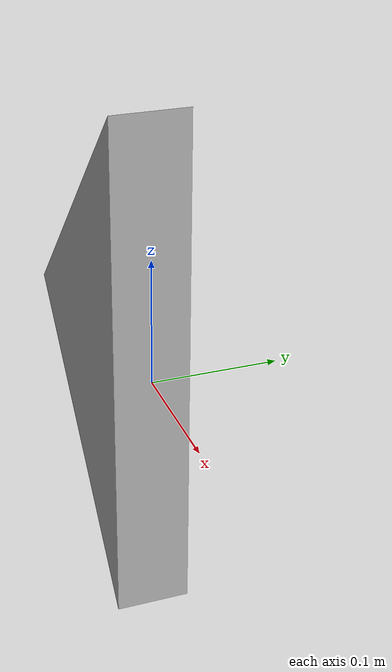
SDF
<?xml version="1.0"?>

<sdf version="1.6">
  <model name='triangle_shape'>
    <static>true</static>
    <link name="body">
      <pose>0 0 0 0 0 0</pose>

        <visual name="visual">
          <geometry>
            <mesh><uri>model://triangle_shape/meshes/triangle_shape.obj</uri></mesh>
          </geometry>
        </visual>

        <collision name="collision">
          <geometry>
            <mesh><uri>model://triangle_shape/meshes/triangle_shape.obj</uri></mesh>
          </geometry>
        </collision>

        <sensor name='sensor_contact' type='contact'>
          <contact>
            <collision>collision</collision>
            <topic>/world/eyantra_world/time</topic>
          </contact>
          <always_on>1</always_on>
          <update_rate>5</update_rate>
        </sensor>

    </link>
  </model>
</sdf>
